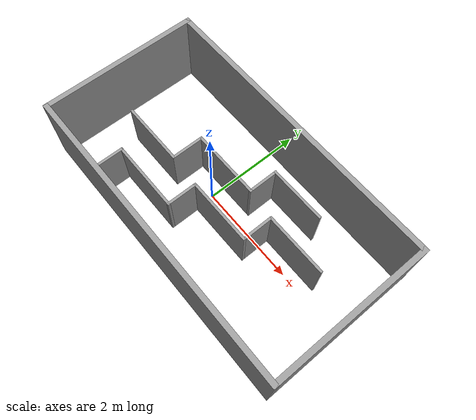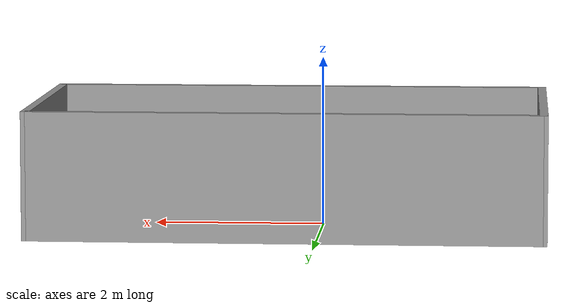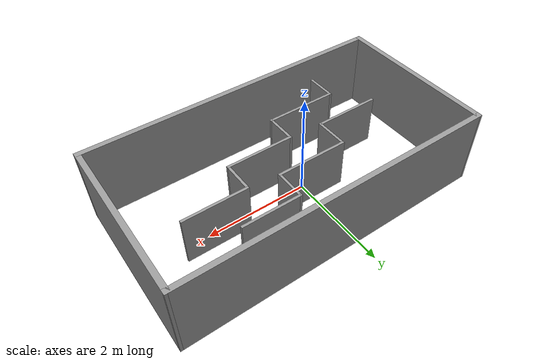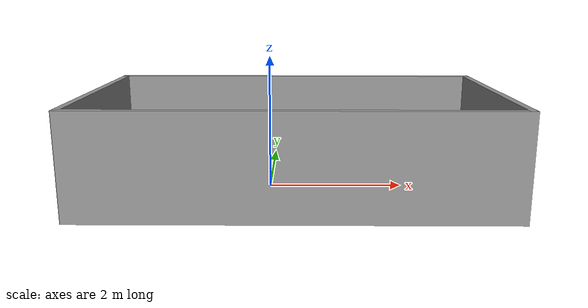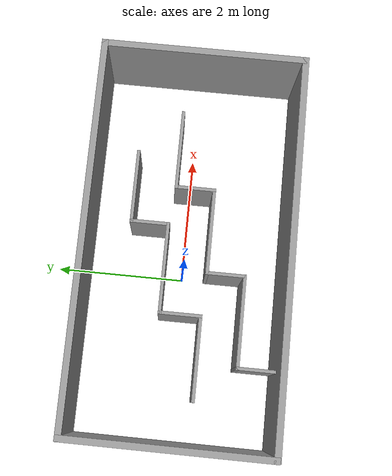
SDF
<?xml version='1.0'?>
<sdf version='1.7'>
  <model name='Parcial_World'>
    <pose>0.364961 -0.014919 0 0 -0 0</pose>
    <link name='Wall_0'>
      <collision name='Wall_0_Collision'>
        <geometry>
          <box>
            <size>3.18002 0.1 1.5</size>
          </box>
        </geometry>
        <pose>0 0 0.75 0 -0 0</pose>
      </collision>
      <visual name='Wall_0_Visual'>
        <pose>0 0 0.75 0 -0 0</pose>
        <geometry>
          <box>
            <size>3.18002 0.1 1.5</size>
          </box>
        </geometry>
        <material>
          <script>
            <uri>file://media/materials/scripts/gazebo.material</uri>
            <name>Gazebo/Grey</name>
          </script>
          <ambient>1 1 1 1</ambient>
        </material>
        <meta>
          <layer>0</layer>
        </meta>
      </visual>
      <pose>-2.96996 0.004919 0 0 -0 1.56755</pose>
    </link>
    <link name='Wall_1'>
      <collision name='Wall_1_Collision'>
        <geometry>
          <box>
            <size>6.04001 0.1 1.5</size>
          </box>
        </geometry>
        <pose>0 0 0.75 0 -0 0</pose>
      </collision>
      <visual name='Wall_1_Visual'>
        <pose>0 0 0.75 0 -0 0</pose>
        <geometry>
          <box>
            <size>6.04001 0.1 1.5</size>
          </box>
        </geometry>
        <material>
          <script>
            <uri>file://media/materials/scripts/gazebo.material</uri>
            <name>Gazebo/Grey</name>
          </script>
          <ambient>1 1 1 1</ambient>
        </material>
        <meta>
          <layer>0</layer>
        </meta>
      </visual>
      <pose>0.005039 1.53992 0 0 -0 -0.001684</pose>
    </link>
    <link name='Wall_12'>
      <collision name='Wall_12_Collision'>
        <geometry>
          <box>
            <size>0.639841 0.05 1</size>
          </box>
        </geometry>
        <pose>0 0 0.5 0 -0 0</pose>
      </collision>
      <visual name='Wall_12_Visual'>
        <pose>0 0 0.5 0 -0 0</pose>
        <geometry>
          <box>
            <size>0.639841 0.05 1</size>
          </box>
        </geometry>
        <material>
          <script>
            <uri>file://media/materials/scripts/gazebo.material</uri>
            <name>Gazebo/Grey</name>
          </script>
          <ambient>1 1 1 1</ambient>
        </material>
        <meta>
          <layer>0</layer>
        </meta>
      </visual>
      <pose>0.944039 -0.054081 0 0 -0 1.5708</pose>
    </link>
    <link name='Wall_13'>
      <collision name='Wall_13_Collision'>
        <geometry>
          <box>
            <size>1.25 0.05 1</size>
          </box>
        </geometry>
        <pose>0 0 0.5 0 -0 0</pose>
      </collision>
      <visual name='Wall_13_Visual'>
        <pose>0 0 0.5 0 -0 0</pose>
        <geometry>
          <box>
            <size>1.25 0.05 1</size>
          </box>
        </geometry>
        <material>
          <script>
            <uri>file://media/materials/scripts/gazebo.material</uri>
            <name>Gazebo/Grey</name>
          </script>
          <ambient>1 1 1 1</ambient>
        </material>
        <meta>
          <layer>0</layer>
        </meta>
      </visual>
      <pose>1.54404 0.240919 0 0 -0 0</pose>
    </link>
    <link name='Wall_18'>
      <collision name='Wall_18_Collision'>
        <geometry>
          <box>
            <size>1.30562 0.05 1</size>
          </box>
        </geometry>
        <pose>0 0 0.5 0 -0 0</pose>
      </collision>
      <visual name='Wall_18_Visual'>
        <pose>0 0 0.5 0 -0 0</pose>
        <geometry>
          <box>
            <size>1.30562 0.05 1</size>
          </box>
        </geometry>
        <material>
          <script>
            <uri>file://media/materials/scripts/gazebo.material</uri>
            <name>Gazebo/Grey</name>
          </script>
          <ambient>1 1 1 1</ambient>
        </material>
        <meta>
          <layer>0</layer>
        </meta>
      </visual>
      <pose>-1.64196 -0.311081 0 0 -0 0</pose>
    </link>
    <link name='Wall_19'>
      <collision name='Wall_19_Collision'>
        <geometry>
          <box>
            <size>0.669894 0.05 1</size>
          </box>
        </geometry>
        <pose>0 0 0.5 0 -0 0</pose>
      </collision>
      <visual name='Wall_19_Visual'>
        <pose>0 0 0.5 0 -0 0</pose>
        <geometry>
          <box>
            <size>0.669894 0.05 1</size>
          </box>
        </geometry>
        <material>
          <script>
            <uri>file://media/materials/scripts/gazebo.material</uri>
            <name>Gazebo/Grey</name>
          </script>
          <ambient>1 1 1 1</ambient>
        </material>
        <meta>
          <layer>0</layer>
        </meta>
      </visual>
      <pose>-1.01396 -0.001081 0 0 -0 1.5708</pose>
    </link>
    <link name='Wall_2'>
      <collision name='Wall_2_Collision'>
        <geometry>
          <box>
            <size>3.18 0.1 1.5</size>
          </box>
        </geometry>
        <pose>0 0 0.75 0 -0 0</pose>
      </collision>
      <visual name='Wall_2_Visual'>
        <pose>0 0 0.75 0 -0 0</pose>
        <geometry>
          <box>
            <size>3.18 0.1 1.5</size>
          </box>
        </geometry>
        <material>
          <script>
            <uri>file://media/materials/scripts/gazebo.material</uri>
            <name>Gazebo/Grey</name>
          </script>
          <ambient>1 1 1 1</ambient>
        </material>
        <meta>
          <layer>0</layer>
        </meta>
      </visual>
      <pose>2.97504 -0.005081 0 0 -0 -1.5708</pose>
    </link>
    <link name='Wall_20'>
      <collision name='Wall_20_Collision'>
        <geometry>
          <box>
            <size>1.41068 0.05 1</size>
          </box>
        </geometry>
        <pose>0 0 0.5 0 -0 0</pose>
      </collision>
      <visual name='Wall_20_Visual'>
        <pose>0 0 0.5 0 -0 0</pose>
        <geometry>
          <box>
            <size>1.41068 0.05 1</size>
          </box>
        </geometry>
        <material>
          <script>
            <uri>file://media/materials/scripts/gazebo.material</uri>
            <name>Gazebo/Grey</name>
          </script>
          <ambient>1 1 1 1</ambient>
        </material>
        <meta>
          <layer>0</layer>
        </meta>
      </visual>
      <pose>-0.333461 0.308919 0 0 -0 0</pose>
    </link>
    <link name='Wall_21'>
      <collision name='Wall_21_Collision'>
        <geometry>
          <box>
            <size>0.617002 0.05 1</size>
          </box>
        </geometry>
        <pose>0 0 0.5 0 -0 0</pose>
      </collision>
      <visual name='Wall_21_Visual'>
        <pose>0 0 0.5 0 -0 0</pose>
        <geometry>
          <box>
            <size>0.617002 0.05 1</size>
          </box>
        </geometry>
        <material>
          <script>
            <uri>file://media/materials/scripts/gazebo.material</uri>
            <name>Gazebo/Grey</name>
          </script>
          <ambient>1 1 1 1</ambient>
        </material>
        <meta>
          <layer>0</layer>
        </meta>
      </visual>
      <pose>0.347039 0.592419 0 0 -0 1.5708</pose>
    </link>
    <link name='Wall_25'>
      <collision name='Wall_25_Collision'>
        <geometry>
          <box>
            <size>1.14968 0.05 1</size>
          </box>
        </geometry>
        <pose>0 0 0.5 0 -0 0</pose>
      </collision>
      <visual name='Wall_25_Visual'>
        <pose>0 0 0.5 0 -0 0</pose>
        <geometry>
          <box>
            <size>1.14968 0.05 1</size>
          </box>
        </geometry>
        <material>
          <script>
            <uri>file://media/materials/scripts/gazebo.material</uri>
            <name>Gazebo/Grey</name>
          </script>
          <ambient>1 1 1 1</ambient>
        </material>
        <meta>
          <layer>0</layer>
        </meta>
      </visual>
      <pose>0.897039 0.875919 0 0 -0 0</pose>
    </link>
    <link name='Wall_3'>
      <collision name='Wall_3_Collision'>
        <geometry>
          <box>
            <size>6.04 0.1 1.5</size>
          </box>
        </geometry>
        <pose>0 0 0.75 0 -0 0</pose>
      </collision>
      <visual name='Wall_3_Visual'>
        <pose>0 0 0.75 0 -0 0</pose>
        <geometry>
          <box>
            <size>6.04 0.1 1.5</size>
          </box>
        </geometry>
        <material>
          <script>
            <uri>file://media/materials/scripts/gazebo.material</uri>
            <name>Gazebo/Grey</name>
          </script>
          <ambient>1 1 1 1</ambient>
        </material>
        <meta>
          <layer>0</layer>
        </meta>
      </visual>
      <pose>0.005039 -1.54508 0 0 -0 3.14159</pose>
    </link>
    <link name='Wall_6'>
      <collision name='Wall_6_Collision'>
        <geometry>
          <box>
            <size>0.63238 0.05 1</size>
          </box>
        </geometry>
        <pose>0 0 0.5 0 -0 0</pose>
      </collision>
      <visual name='Wall_6_Visual'>
        <pose>0 0 0.5 0 -0 0</pose>
        <geometry>
          <box>
            <size>0.63238 0.05 1</size>
          </box>
        </geometry>
        <material>
          <script>
            <uri>file://media/materials/scripts/gazebo.material</uri>
            <name>Gazebo/Grey</name>
          </script>
          <ambient>1 1 1 1</ambient>
        </material>
        <meta>
          <layer>0</layer>
        </meta>
      </visual>
      <pose>-1.73296 -1.21508 0 0 -0 1.5708</pose>
    </link>
    <link name='Wall_7'>
      <collision name='Wall_7_Collision'>
        <geometry>
          <box>
            <size>1.43403 0.05 1</size>
          </box>
        </geometry>
        <pose>0 0 0.5 0 -0 0</pose>
      </collision>
      <visual name='Wall_7_Visual'>
        <pose>0 0 0.5 0 -0 0</pose>
        <geometry>
          <box>
            <size>1.43403 0.05 1</size>
          </box>
        </geometry>
        <material>
          <script>
            <uri>file://media/materials/scripts/gazebo.material</uri>
            <name>Gazebo/Grey</name>
          </script>
          <ambient>1 1 1 1</ambient>
        </material>
        <meta>
          <layer>0</layer>
        </meta>
      </visual>
      <pose>-1.04096 -0.924081 0 0 -0 0</pose>
    </link>
    <link name='Wall_8'>
      <collision name='Wall_8_Collision'>
        <geometry>
          <box>
            <size>0.625049 0.05 1</size>
          </box>
        </geometry>
        <pose>0 0 0.5 0 -0 0</pose>
      </collision>
      <visual name='Wall_8_Visual'>
        <pose>0 0 0.5 0 -0 0</pose>
        <geometry>
          <box>
            <size>0.625049 0.05 1</size>
          </box>
        </geometry>
        <material>
          <script>
            <uri>file://media/materials/scripts/gazebo.material</uri>
            <name>Gazebo/Grey</name>
          </script>
          <ambient>1 1 1 1</ambient>
        </material>
        <meta>
          <layer>0</layer>
        </meta>
      </visual>
      <pose>-0.348961 -0.636581 0 0 -0 1.5708</pose>
    </link>
    <link name='Wall_9'>
      <collision name='Wall_9_Collision'>
        <geometry>
          <box>
            <size>1.34304 0.05 1</size>
          </box>
        </geometry>
        <pose>0 0 0.5 0 -0 0</pose>
      </collision>
      <visual name='Wall_9_Visual'>
        <pose>0 0 0.5 0 -0 0</pose>
        <geometry>
          <box>
            <size>1.34304 0.05 1</size>
          </box>
        </geometry>
        <material>
          <script>
            <uri>file://media/materials/scripts/gazebo.material</uri>
            <name>Gazebo/Grey</name>
          </script>
          <ambient>1 1 1 1</ambient>
        </material>
        <meta>
          <layer>0</layer>
        </meta>
      </visual>
      <pose>0.297539 -0.349081 0 0 -0 0</pose>
    </link>
    <static>1</static>
  </model>
</sdf>
